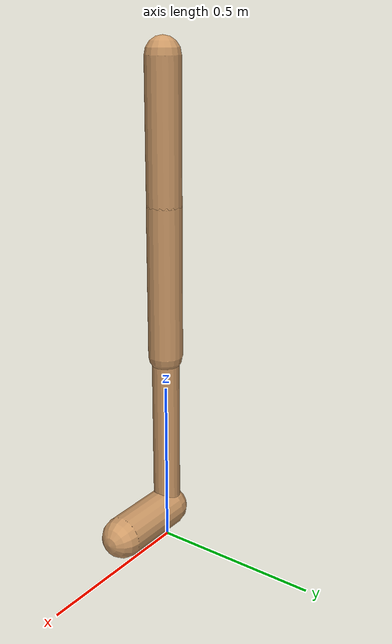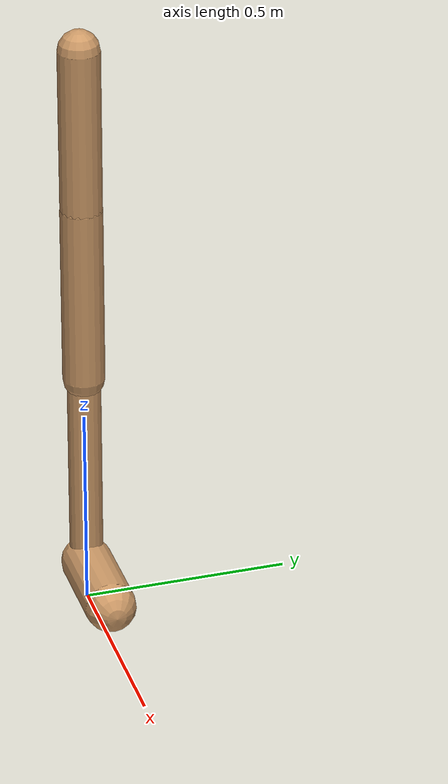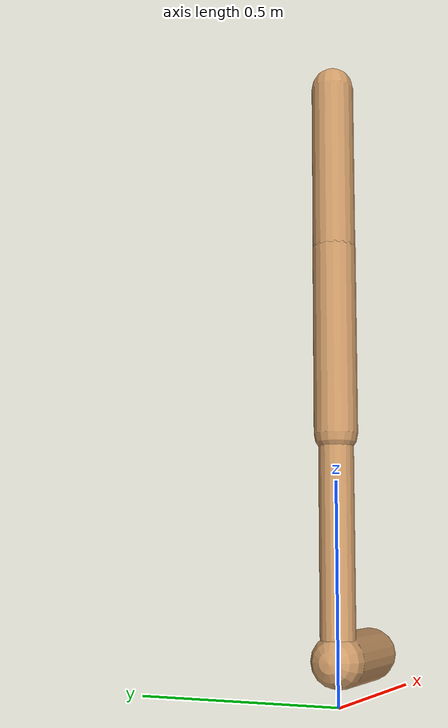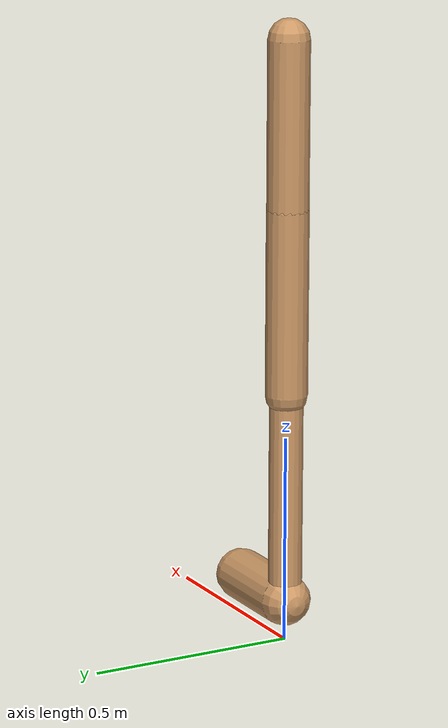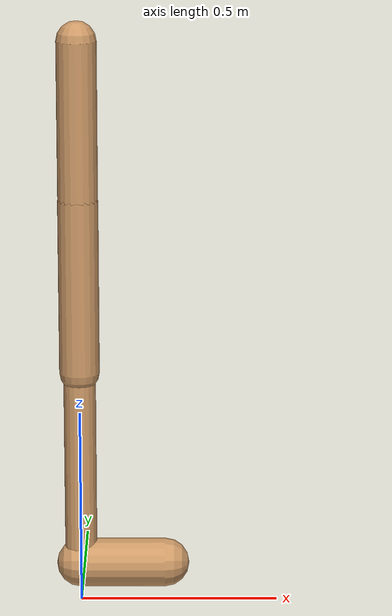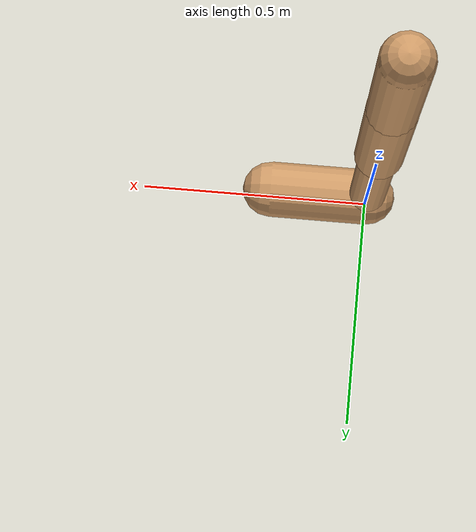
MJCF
<mujoco model="walker2d">
  <compiler angle="degree" coordinate="global" inertiafromgeom="true" />
  <default>
    <joint armature="0.01" damping=".1" limited="true" />
    <geom conaffinity="0" condim="3" contype="1" density="1000" friction="0.8 .1 .1" rgba="0.8 0.6 .4 1" />
  </default>
  <option integrator="RK4" timestep="0.002" />
  <worldbody>

    <body name="torso" pos="0 0 -0.016653717050445813">
      <joint armature="0" axis="1 0 0" damping="0" limited="false" name="ignorex" pos="0 0 0" stiffness="0" type="slide" />
      <joint armature="0" axis="0 0 1" damping="0" limited="false" name="ignorez" pos="0 0 0" ref="1.25" stiffness="0" type="slide" />
      <joint armature="0" axis="0 1 0" damping="0" limited="false" name="ignorey" pos="0 0 0" stiffness="0" type="hinge" />
      <geom fromto="0 0 1.45 0 0 1.05" name="torso_geom" size="0.04995245174540017" type="capsule" />
      <body name="thigh">
        <joint axis="0 -1 0" name="thigh_joint" pos="0 0 1.05" range="-150 0" type="hinge" />
        <geom fromto="0.0 0.0 1.05 0.0 0.0 0.6078886028133691" name="thigh_geom" size="0.050561444505428" type="capsule" />
        <body name="leg" pos="0.0 0.0 0.007888602813369117">
          <joint axis="0 -1 0" name="leg_joint" pos="0 0 0.6" range="-150 0" type="hinge" />
          <geom fromto="0.0 0.0 0.6 0.0 0.0 0.10876511423707674" name="leg_geom" size="0.0404491556043424" type="capsule" />
          <body name="foot" pos="0.0 0.0 0.008765114237076738">
            <joint axis="0 -1 0" name="foot_joint" pos="0 0 0.1" range="-45 45" type="hinge" />
            <geom fromto="-0.0 0.0 0.1 0.21403086034288382 0.0 0.1" name="foot_geom" size="0.06197064817377567" type="capsule" />
          </body>
        </body>
      </body>

      <body name="thigh_left">
        <joint axis="0 -1 0" name="thigh_left_joint" pos="0 0 1.05" range="-150 0" type="hinge" />
        <geom fromto="0.0 0.0 1.05 0.0 0.0 0.6078886028133691" name="thigh_left_geom" rgba=".7 .3 .6 1" size="0.050561444505428" type="capsule" />
        <body name="leg_left" pos="0.0 0.0 0.007888602813369117">
          <joint axis="0 -1 0" name="leg_left_joint" pos="0 0 0.6" range="-150 0" type="hinge" />
          <geom fromto="0.0 0.0 0.6 0.0 0.0 0.10876511423707674" name="leg_left_geom" rgba=".7 .3 .6 1" size="0.0404491556043424" type="capsule" />
          <body name="foot_left" pos="0.0 0.0 0.008765114237076738">
            <joint axis="0 -1 0" name="foot_left_joint" pos="0 0 0.1" range="-45 45" type="hinge" />
            <geom fromto="-0.0 0.0 0.1 0.21403086034288382 0.0 0.1" name="foot_left_geom" rgba=".7 .3 .6 1" size="0.06197064817377567" type="capsule" />
          </body>
        </body>
      </body>
    </body>
  </worldbody>
  <actuator>

    <motor ctrllimited="true" ctrlrange="-1.0 1.0" gear="100" joint="thigh_joint" />
    <motor ctrllimited="true" ctrlrange="-1.0 1.0" gear="100" joint="leg_joint" />
    <motor ctrllimited="true" ctrlrange="-1.0 1.0" gear="100" joint="foot_joint" />
    <motor ctrllimited="true" ctrlrange="-1.0 1.0" gear="100" joint="thigh_left_joint" />
    <motor ctrllimited="true" ctrlrange="-1.0 1.0" gear="100" joint="leg_left_joint" />
    <motor ctrllimited="true" ctrlrange="-1.0 1.0" gear="100" joint="foot_left_joint" />

  </actuator>
</mujoco>
